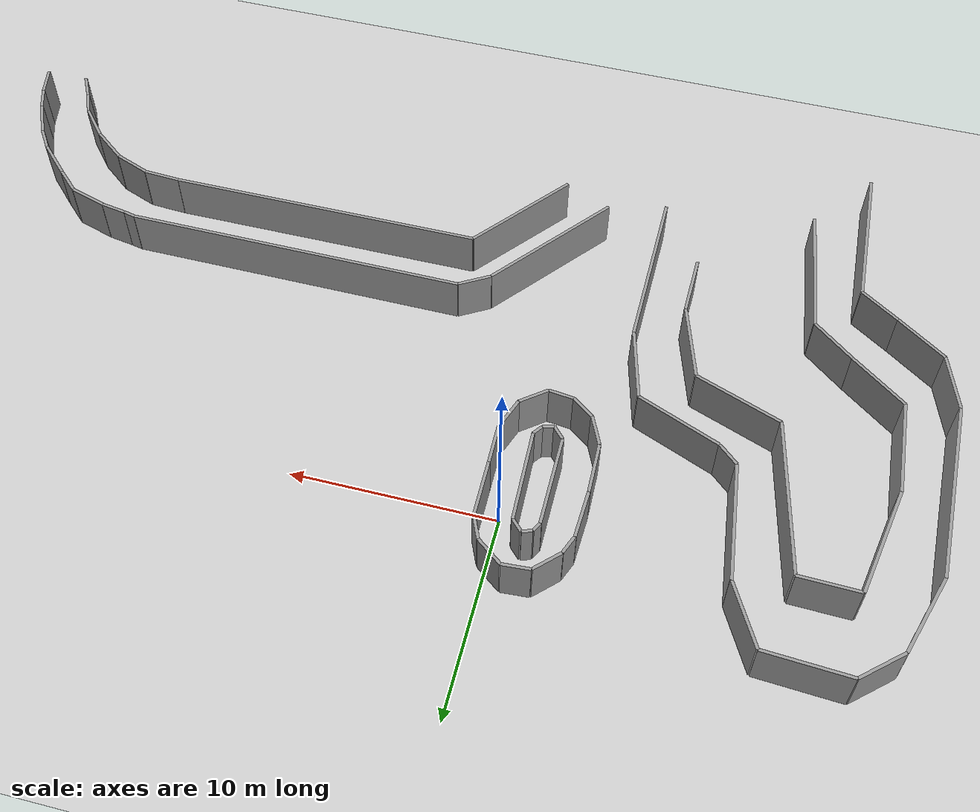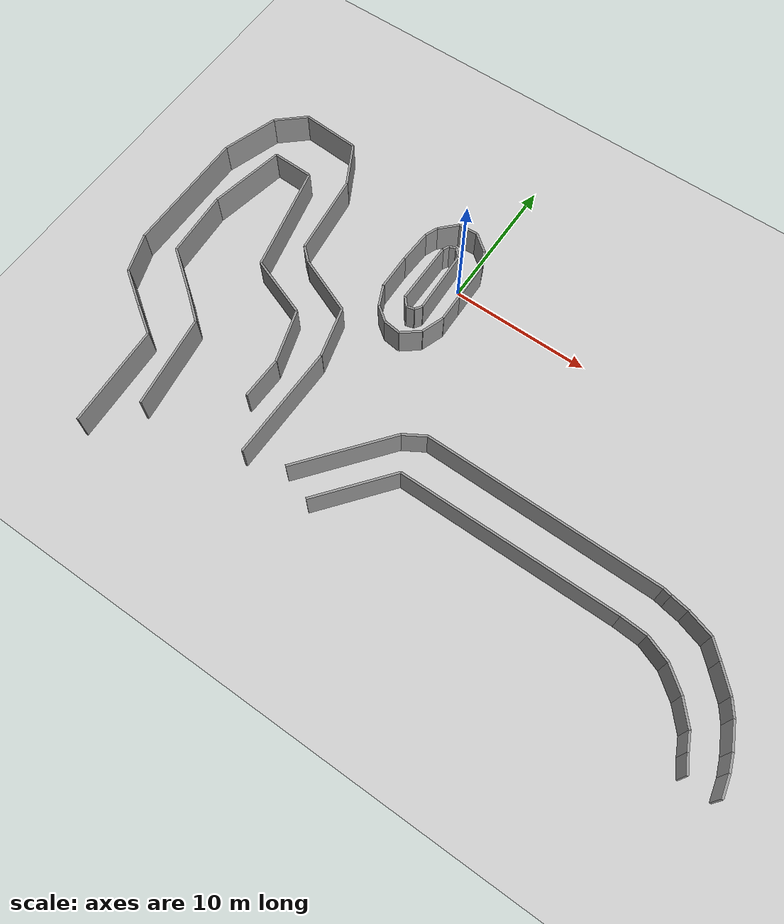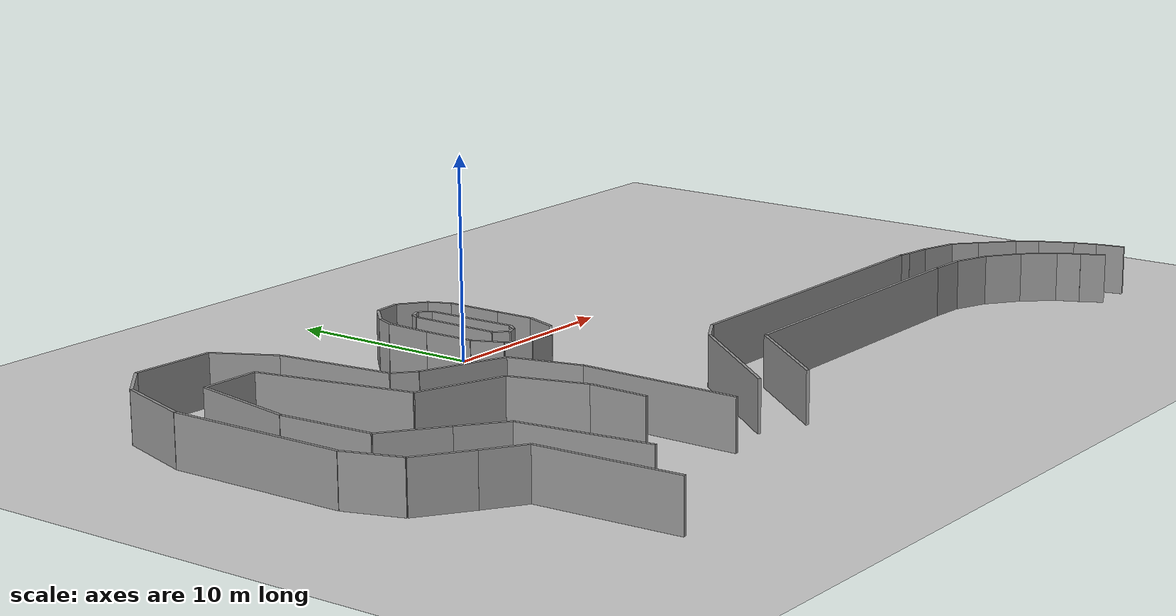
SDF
<sdf version="1.6">
 <world name="default">
  <model name="ground_plane">
   <static>1</static>
   <link name="link">
    <collision name="collision">
     <geometry><plane><normal>0 0 1</normal><size>100 100</size></plane></geometry>
     <surface><friction><ode><mu>100</mu><mu2>50</mu2></ode></friction></surface>
    </collision>
    <visual name="visual">
     <cast_shadows>0</cast_shadows>
     <geometry><plane><normal>0 0 1</normal><size>100 100</size></plane></geometry>
     <material>
      <script><uri>file://media/materials/scripts/gazebo.material</uri><name>Gazebo/Grey</name></script>
     </material>
    </visual>
   </link>
  </model>
  <model name="track2">
   <link name="wall_000">
    <collision name="wall_000_Collision">
     <geometry><box><size>4.375392 0.15 2.5</size></box></geometry>
     <pose>0 0 1.25 0 -0 0</pose>
    </collision>
    <visual name="wall_000_Visual">
     <pose>0 0 1.25 0 -0 0</pose>
     <geometry><box><size>4.375392 0.15 2.5</size></box></geometry>
     <material>
      <script><uri>file://media/materials/scripts/gazebo.material</uri><name>Gazebo/Grey</name></script>
      <ambient>1 1 1 1</ambient>
     </material>
     <meta><layer>0</layer></meta>
    </visual>
    <pose>-6.965100 -5.833000 0 0 -0 -0.390624</pose>
   </link>
   <link name="wall_001">
    <collision name="wall_001_Collision">
     <geometry><box><size>1.246207 0.15 2.5</size></box></geometry>
     <pose>0 0 1.25 0 -0 0</pose>
    </collision>
    <visual name="wall_001_Visual">
     <pose>0 0 1.25 0 -0 0</pose>
     <geometry><box><size>1.246207 0.15 2.5</size></box></geometry>
     <material>
      <script><uri>file://media/materials/scripts/gazebo.material</uri><name>Gazebo/Grey</name></script>
      <ambient>1 1 1 1</ambient>
     </material>
     <meta><layer>0</layer></meta>
    </visual>
    <pose>-9.451000 -4.583000 0 0 -0 -0.733173</pose>
   </link>
   <link name="wall_002">
    <collision name="wall_002_Collision">
     <geometry><box><size>5.872911 0.15 2.5</size></box></geometry>
     <pose>0 0 1.25 0 -0 0</pose>
    </collision>
    <visual name="wall_002_Visual">
     <pose>0 0 1.25 0 -0 0</pose>
     <geometry><box><size>5.872911 0.15 2.5</size></box></geometry>
     <material>
      <script><uri>file://media/materials/scripts/gazebo.material</uri><name>Gazebo/Grey</name></script>
      <ambient>1 1 1 1</ambient>
     </material>
     <meta><layer>0</layer></meta>
    </visual>
    <pose>-10.260000 -1.250000 0 0 -0 -1.452693</pose>
   </link>
   <link name="wall_003">
    <collision name="wall_003_Collision">
     <geometry><box><size>3.309769 0.15 2.5</size></box></geometry>
     <pose>0 0 1.25 0 -0 0</pose>
    </collision>
    <visual name="wall_003_Visual">
     <pose>0 0 1.25 0 -0 0</pose>
     <geometry><box><size>3.309769 0.15 2.5</size></box></geometry>
     <material>
      <script><uri>file://media/materials/scripts/gazebo.material</uri><name>Gazebo/Grey</name></script>
      <ambient>1 1 1 1</ambient>
     </material>
     <meta><layer>0</layer></meta>
    </visual>
    <pose>-11.387000 3.125000 0 0 -0 -1.079311</pose>
   </link>
   <link name="wall_004">
    <collision name="wall_004_Collision">
     <geometry><box><size>4.169502 0.15 2.5</size></box></geometry>
     <pose>0 0 1.25 0 -0 0</pose>
    </collision>
    <visual name="wall_004_Visual">
     <pose>0 0 1.25 0 -0 0</pose>
     <geometry><box><size>4.169502 0.15 2.5</size></box></geometry>
     <material>
      <script><uri>file://media/materials/scripts/gazebo.material</uri><name>Gazebo/Grey</name></script>
      <ambient>1 1 1 1</ambient>
     </material>
     <meta><layer>0</layer></meta>
    </visual>
    <pose>-14.249000 4.709000 0 0 -0 -0.059995</pose>
   </link>
   <link name="wall_005">
    <collision name="wall_005_Collision">
     <geometry><box><size>2.490928 0.15 2.5</size></box></geometry>
     <pose>0 0 1.25 0 -0 0</pose>
    </collision>
    <visual name="wall_005_Visual">
     <pose>0 0 1.25 0 -0 0</pose>
     <geometry><box><size>2.490928 0.15 2.5</size></box></geometry>
     <material>
      <script><uri>file://media/materials/scripts/gazebo.material</uri><name>Gazebo/Grey</name></script>
      <ambient>1 1 1 1</ambient>
     </material>
     <meta><layer>0</layer></meta>
    </visual>
    <pose>-17.255000 4.000000 0 0 -0 0.733710</pose>
   </link>
   <link name="wall_006">
    <collision name="wall_006_Collision">
     <geometry><box><size>4.116790 0.15 2.5</size></box></geometry>
     <pose>0 0 1.25 0 -0 0</pose>
    </collision>
    <visual name="wall_006_Visual">
     <pose>0 0 1.25 0 -0 0</pose>
     <geometry><box><size>4.116790 0.15 2.5</size></box></geometry>
     <material>
      <script><uri>file://media/materials/scripts/gazebo.material</uri><name>Gazebo/Grey</name></script>
      <ambient>1 1 1 1</ambient>
     </material>
     <meta><layer>0</layer></meta>
    </visual>
    <pose>-18.815000 1.208000 0 0 -0 1.257188</pose>
   </link>
   <link name="wall_007">
    <collision name="wall_007_Collision">
     <geometry><box><size>9.000174 0.15 2.5</size></box></geometry>
     <pose>0 0 1.25 0 -0 0</pose>
    </collision>
    <visual name="wall_007_Visual">
     <pose>0 0 1.25 0 -0 0</pose>
     <geometry><box><size>9.000174 0.15 2.5</size></box></geometry>
     <material>
      <script><uri>file://media/materials/scripts/gazebo.material</uri><name>Gazebo/Grey</name></script>
      <ambient>1 1 1 1</ambient>
     </material>
     <meta><layer>0</layer></meta>
    </visual>
    <pose>-19.422000 -5.250000 0 0 -0 1.577018</pose>
   </link>
   <link name="wall_008">
    <collision name="wall_008_Collision">
     <geometry><box><size>2.901719 0.15 2.5</size></box></geometry>
     <pose>0 0 1.25 0 -0 0</pose>
    </collision>
    <visual name="wall_008_Visual">
     <pose>0 0 1.25 0 -0 0</pose>
     <geometry><box><size>2.901719 0.15 2.5</size></box></geometry>
     <material>
      <script><uri>file://media/materials/scripts/gazebo.material</uri><name>Gazebo/Grey</name></script>
      <ambient>1 1 1 1</ambient>
     </material>
     <meta><layer>0</layer></meta>
    </visual>
    <pose>-18.931000 -11.125000 0 0 -0 1.895598</pose>
   </link>
   <link name="wall_009">
    <collision name="wall_009_Collision">
     <geometry><box><size>2.897319 0.15 2.5</size></box></geometry>
     <pose>0 0 1.25 0 -0 0</pose>
    </collision>
    <visual name="wall_009_Visual">
     <pose>0 0 1.25 0 -0 0</pose>
     <geometry><box><size>2.897319 0.15 2.5</size></box></geometry>
     <material>
      <script><uri>file://media/materials/scripts/gazebo.material</uri><name>Gazebo/Grey</name></script>
      <ambient>1 1 1 1</ambient>
     </material>
     <meta><layer>0</layer></meta>
    </visual>
    <pose>-17.283000 -13.333300 0 0 -0 2.528718</pose>
   </link>
   <link name="wall_010">
    <collision name="wall_010_Collision">
     <geometry><box><size>2.232711 0.15 2.5</size></box></geometry>
     <pose>0 0 1.25 0 -0 0</pose>
    </collision>
    <visual name="wall_010_Visual">
     <pose>0 0 1.25 0 -0 0</pose>
     <geometry><box><size>2.232711 0.15 2.5</size></box></geometry>
     <material>
      <script><uri>file://media/materials/scripts/gazebo.material</uri><name>Gazebo/Grey</name></script>
      <ambient>1 1 1 1</ambient>
     </material>
     <meta><layer>0</layer></meta>
    </visual>
    <pose>-15.173000 -14.791600 0 0 -0 2.547379</pose>
   </link>
   <link name="wall_011">
    <collision name="wall_011_Collision">
     <geometry><box><size>7.257652 0.15 2.5</size></box></geometry>
     <pose>0 0 1.25 0 -0 0</pose>
    </collision>
    <visual name="wall_011_Visual">
     <pose>0 0 1.25 0 -0 0</pose>
     <geometry><box><size>7.257652 0.15 2.5</size></box></geometry>
     <material>
      <script><uri>file://media/materials/scripts/gazebo.material</uri><name>Gazebo/Grey</name></script>
      <ambient>1 1 1 1</ambient>
     </material>
     <meta><layer>0</layer></meta>
    </visual>
    <pose>-14.075000 -19.041300 0 0 -0 1.618488</pose>
   </link>
   <link name="wall_018">
    <collision name="wall_018_Collision">
     <geometry><box><size>8.166205 0.15 2.5</size></box></geometry>
     <pose>0 0 1.25 0 -0 0</pose>
    </collision>
    <visual name="wall_018_Visual">
     <pose>0 0 1.25 0 -0 0</pose>
     <geometry><box><size>8.166205 0.15 2.5</size></box></geometry>
     <material>
      <script><uri>file://media/materials/scripts/gazebo.material</uri><name>Gazebo/Grey</name></script>
      <ambient>1 1 1 1</ambient>
     </material>
     <meta><layer>0</layer></meta>
    </visual>
    <pose>-4.046300 -14.333000 0 0 -0 -1.577874</pose>
   </link>
   <link name="wall_019">
    <collision name="wall_019_Collision">
     <geometry><box><size>3.701393 0.15 2.5</size></box></geometry>
     <pose>0 0 1.25 0 -0 0</pose>
    </collision>
    <visual name="wall_019_Visual">
     <pose>0 0 1.25 0 -0 0</pose>
     <geometry><box><size>3.701393 0.15 2.5</size></box></geometry>
     <material>
      <script><uri>file://media/materials/scripts/gazebo.material</uri><name>Gazebo/Grey</name></script>
      <ambient>1 1 1 1</ambient>
     </material>
     <meta><layer>0</layer></meta>
    </visual>
    <pose>-4.479800 -8.458000 0 0 -0 -1.318269</pose>
   </link>
   <link name="wall_020">
    <collision name="wall_020_Collision">
     <geometry><box><size>4.507489 0.15 2.5</size></box></geometry>
     <pose>0 0 1.25 0 -0 0</pose>
    </collision>
    <visual name="wall_020_Visual">
     <pose>0 0 1.25 0 -0 0</pose>
     <geometry><box><size>4.507489 0.15 2.5</size></box></geometry>
     <material>
      <script><uri>file://media/materials/scripts/gazebo.material</uri><name>Gazebo/Grey</name></script>
      <ambient>1 1 1 1</ambient>
     </material>
     <meta><layer>0</layer></meta>
    </visual>
    <pose>-9.422000 -7.708000 0 0 -0 -0.359082</pose>
   </link>
   <link name="wall_021">
    <collision name="wall_021_Collision">
     <geometry><box><size>7.847072 0.15 2.5</size></box></geometry>
     <pose>0 0 1.25 0 -0 0</pose>
    </collision>
    <visual name="wall_021_Visual">
     <pose>0 0 1.25 0 -0 0</pose>
     <geometry><box><size>7.847072 0.15 2.5</size></box></geometry>
     <material>
      <script><uri>file://media/materials/scripts/gazebo.material</uri><name>Gazebo/Grey</name></script>
      <ambient>1 1 1 1</ambient>
     </material>
     <meta><layer>0</layer></meta>
    </visual>
    <pose>-12.370000 -3.083000 0 0 -0 -1.355555</pose>
   </link>
   <link name="wall_022">
    <collision name="wall_022_Collision">
     <geometry><box><size>2.949197 0.15 2.5</size></box></geometry>
     <pose>0 0 1.25 0 -0 0</pose>
    </collision>
    <visual name="wall_022_Visual">
     <pose>0 0 1.25 0 -0 0</pose>
     <geometry><box><size>2.949197 0.15 2.5</size></box></geometry>
     <material>
      <script><uri>file://media/materials/scripts/gazebo.material</uri><name>Gazebo/Grey</name></script>
      <ambient>1 1 1 1</ambient>
     </material>
     <meta><layer>0</layer></meta>
    </visual>
    <pose>-14.682000 0.792000 0 0 -0 -0.028486</pose>
   </link>
   <link name="wall_023">
    <collision name="wall_023_Collision">
     <geometry><box><size>5.516913 0.15 2.5</size></box></geometry>
     <pose>0 0 1.25 0 -0 0</pose>
    </collision>
    <visual name="wall_023_Visual">
     <pose>0 0 1.25 0 -0 0</pose>
     <geometry><box><size>5.516913 0.15 2.5</size></box></geometry>
     <material>
      <script><uri>file://media/materials/scripts/gazebo.material</uri><name>Gazebo/Grey</name></script>
      <ambient>1 1 1 1</ambient>
     </material>
     <meta><layer>0</layer></meta>
    </visual>
    <pose>-16.676000 -1.875000 0 0 -0 1.381150</pose>
   </link>
   <link name="wall_024">
    <collision name="wall_024_Collision">
     <geometry><box><size>4.758723 0.15 2.5</size></box></geometry>
     <pose>0 0 1.25 0 -0 0</pose>
    </collision>
    <visual name="wall_024_Visual">
     <pose>0 0 1.25 0 -0 0</pose>
     <geometry><box><size>4.758723 0.15 2.5</size></box></geometry>
     <material>
      <script><uri>file://media/materials/scripts/gazebo.material</uri><name>Gazebo/Grey</name></script>
      <ambient>1 1 1 1</ambient>
     </material>
     <meta><layer>0</layer></meta>
    </visual>
    <pose>-17.052000 -6.959000 0 0 -0 1.631354</pose>
   </link>
   <link name="wall_025">
    <collision name="wall_025_Collision">
     <geometry><box><size>3.328002 0.15 2.5</size></box></geometry>
     <pose>0 0 1.25 0 -0 0</pose>
    </collision>
    <visual name="wall_025_Visual">
     <pose>0 0 1.25 0 -0 0</pose>
     <geometry><box><size>3.328002 0.15 2.5</size></box></geometry>
     <material>
      <script><uri>file://media/materials/scripts/gazebo.material</uri><name>Gazebo/Grey</name></script>
      <ambient>1 1 1 1</ambient>
     </material>
     <meta><layer>0</layer></meta>
    </visual>
    <pose>-15.578000 -10.334000 0 0 -0 2.496890</pose>
   </link>
   <link name="wall_026">
    <collision name="wall_026_Collision">
     <geometry><box><size>2.521908 0.15 2.5</size></box></geometry>
     <pose>0 0 1.25 0 -0 0</pose>
    </collision>
    <visual name="wall_026_Visual">
     <pose>0 0 1.25 0 -0 0</pose>
     <geometry><box><size>2.521908 0.15 2.5</size></box></geometry>
     <material>
      <script><uri>file://media/materials/scripts/gazebo.material</uri><name>Gazebo/Grey</name></script>
      <ambient>1 1 1 1</ambient>
     </material>
     <meta><layer>0</layer></meta>
    </visual>
    <pose>-13.266000 -12.125000 0 0 -0 2.463508</pose>
   </link>
   <link name="wall_027">
    <collision name="wall_027_Collision">
     <geometry><box><size>6.640970 0.15 2.5</size></box></geometry>
     <pose>0 0 1.25 0 -0 0</pose>
    </collision>
    <visual name="wall_027_Visual">
     <pose>0 0 1.25 0 -0 0</pose>
     <geometry><box><size>6.640970 0.15 2.5</size></box></geometry>
     <material>
      <script><uri>file://media/materials/scripts/gazebo.material</uri><name>Gazebo/Grey</name></script>
      <ambient>1 1 1 1</ambient>
     </material>
     <meta><layer>0</layer></meta>
    </visual>
    <pose>-11.850000 -16.208000 0 0 -0 1.701875</pose>
   </link>
   <link name="wall_032">
    <collision name="wall_032_Collision">
     <geometry><box><size>3.000557 0.15 2.5</size></box></geometry>
     <pose>0 0 1.25 0 -0 0</pose>
    </collision>
    <visual name="wall_032_Visual">
     <pose>0 0 1.25 0 -0 0</pose>
     <geometry><box><size>3.000557 0.15 2.5</size></box></geometry>
     <material>
      <script><uri>file://media/materials/scripts/gazebo.material</uri><name>Gazebo/Grey</name></script>
      <ambient>1 1 1 1</ambient>
     </material>
     <meta><layer>0</layer></meta>
    </visual>
    <pose>-6.184900 -13.750000 0 0 -0 -1.590061</pose>
   </link>
   <link name="wall_033">
    <collision name="wall_033_Collision">
     <geometry><box><size>3.924135 0.15 2.5</size></box></geometry>
     <pose>0 0 1.25 0 -0 0</pose>
    </collision>
    <visual name="wall_033_Visual">
     <pose>0 0 1.25 0 -0 0</pose>
     <geometry><box><size>3.924135 0.15 2.5</size></box></geometry>
     <material>
      <script><uri>file://media/materials/scripts/gazebo.material</uri><name>Gazebo/Grey</name></script>
      <ambient>1 1 1 1</ambient>
     </material>
     <meta><layer>0</layer></meta>
    </visual>
    <pose>-6.734000 -10.375000 0 0 -0 -1.271773</pose>
   </link>
   <link name="wall_034">
    <collision name="wall_034_Collision">
     <geometry><box><size>1.195634 0.15 2.5</size></box></geometry>
     <pose>0 0 1.25 0 -0 0</pose>
    </collision>
    <visual name="wall_034_Visual">
     <pose>0 0 1.25 0 -0 0</pose>
     <geometry><box><size>1.195634 0.15 2.5</size></box></geometry>
     <material>
      <script><uri>file://media/materials/scripts/gazebo.material</uri><name>Gazebo/Grey</name></script>
      <ambient>1 1 1 1</ambient>
     </material>
     <meta><layer>0</layer></meta>
    </visual>
    <pose>0.586740 1.912500 0 0 -0 -1.157576</pose>
   </link>
   <link name="wall_035">
    <collision name="wall_035_Collision">
     <geometry><box><size>1.548632 0.15 2.5</size></box></geometry>
     <pose>0 0 1.25 0 -0 0</pose>
    </collision>
    <visual name="wall_035_Visual">
     <pose>0 0 1.25 0 -0 0</pose>
     <geometry><box><size>1.548632 0.15 2.5</size></box></geometry>
     <material>
      <script><uri>file://media/materials/scripts/gazebo.material</uri><name>Gazebo/Grey</name></script>
      <ambient>1 1 1 1</ambient>
     </material>
     <meta><layer>0</layer></meta>
    </visual>
    <pose>-0.266760 2.932500 0 0 -0 -0.656333</pose>
   </link>
   <link name="wall_036">
    <collision name="wall_036_Collision">
     <geometry><box><size>1.362576 0.15 2.5</size></box></geometry>
     <pose>0 0 1.25 0 -0 0</pose>
    </collision>
    <visual name="wall_036_Visual">
     <pose>0 0 1.25 0 -0 0</pose>
     <geometry><box><size>1.362576 0.15 2.5</size></box></geometry>
     <material>
      <script><uri>file://media/materials/scripts/gazebo.material</uri><name>Gazebo/Grey</name></script>
      <ambient>1 1 1 1</ambient>
     </material>
     <meta><layer>0</layer></meta>
    </visual>
    <pose>-1.560000 3.360000 0 0 -0 0.066100</pose>
   </link>
   <link name="wall_037">
    <collision name="wall_037_Collision">
     <geometry><box><size>1.558364 0.15 2.5</size></box></geometry>
     <pose>0 0 1.25 0 -0 0</pose>
    </collision>
    <visual name="wall_037_Visual">
     <pose>0 0 1.25 0 -0 0</pose>
     <geometry><box><size>1.558364 0.15 2.5</size></box></geometry>
     <material>
      <script><uri>file://media/materials/scripts/gazebo.material</uri><name>Gazebo/Grey</name></script>
      <ambient>1 1 1 1</ambient>
     </material>
     <meta><layer>0</layer></meta>
    </visual>
    <pose>-2.786700 2.760000 0 0 -0 0.792749</pose>
   </link>
   <link name="wall_038">
    <collision name="wall_038_Collision">
     <geometry><box><size>0.983273 0.15 2.5</size></box></geometry>
     <pose>0 0 1.25 0 -0 0</pose>
    </collision>
    <visual name="wall_038_Visual">
     <pose>0 0 1.25 0 -0 0</pose>
     <geometry><box><size>0.983273 0.15 2.5</size></box></geometry>
     <material>
      <script><uri>file://media/materials/scripts/gazebo.material</uri><name>Gazebo/Grey</name></script>
      <ambient>1 1 1 1</ambient>
     </material>
     <meta><layer>0</layer></meta>
    </visual>
    <pose>-3.513600 1.747500 0 0 -0 1.195956</pose>
   </link>
   <link name="wall_039">
    <collision name="wall_039_Collision">
     <geometry><box><size>2.372378 0.15 2.5</size></box></geometry>
     <pose>0 0 1.25 0 -0 0</pose>
    </collision>
    <visual name="wall_039_Visual">
     <pose>0 0 1.25 0 -0 0</pose>
     <geometry><box><size>2.372378 0.15 2.5</size></box></geometry>
     <material>
      <script><uri>file://media/materials/scripts/gazebo.material</uri><name>Gazebo/Grey</name></script>
      <ambient>1 1 1 1</ambient>
     </material>
     <meta><layer>0</layer></meta>
    </visual>
    <pose>-3.746700 0.105000 0 0 -0 1.526016</pose>
   </link>
   <link name="wall_040">
    <collision name="wall_040_Collision">
     <geometry><box><size>2.535562 0.15 2.5</size></box></geometry>
     <pose>0 0 1.25 0 -0 0</pose>
    </collision>
    <visual name="wall_040_Visual">
     <pose>0 0 1.25 0 -0 0</pose>
     <geometry><box><size>2.535562 0.15 2.5</size></box></geometry>
     <material>
      <script><uri>file://media/materials/scripts/gazebo.material</uri><name>Gazebo/Grey</name></script>
      <ambient>1 1 1 1</ambient>
     </material>
     <meta><layer>0</layer></meta>
    </visual>
    <pose>-3.773100 -2.347500 0 0 -0 1.591858</pose>
   </link>
   <link name="wall_041">
    <collision name="wall_041_Collision">
     <geometry><box><size>1.561958 0.15 2.5</size></box></geometry>
     <pose>0 0 1.25 0 -0 0</pose>
    </collision>
    <visual name="wall_041_Visual">
     <pose>0 0 1.25 0 -0 0</pose>
     <geometry><box><size>1.561958 0.15 2.5</size></box></geometry>
     <material>
      <script><uri>file://media/materials/scripts/gazebo.material</uri><name>Gazebo/Grey</name></script>
      <ambient>1 1 1 1</ambient>
     </material>
     <meta><layer>0</layer></meta>
    </visual>
    <pose>-3.426600 -4.327500 0 0 -0 1.992687</pose>
   </link>
   <link name="wall_042">
    <collision name="wall_042_Collision">
     <geometry><box><size>1.280286 0.15 2.5</size></box></geometry>
     <pose>0 0 1.25 0 -0 0</pose>
    </collision>
    <visual name="wall_042_Visual">
     <pose>0 0 1.25 0 -0 0</pose>
     <geometry><box><size>1.280286 0.15 2.5</size></box></geometry>
     <material>
      <script><uri>file://media/materials/scripts/gazebo.material</uri><name>Gazebo/Grey</name></script>
      <ambient>1 1 1 1</ambient>
     </material>
     <meta><layer>0</layer></meta>
    </visual>
    <pose>-2.593500 -5.422500 0 0 -0 2.501185</pose>
   </link>
   <link name="wall_043">
    <collision name="wall_043_Collision">
     <geometry><box><size>1.236135 0.15 2.5</size></box></geometry>
     <pose>0 0 1.25 0 -0 0</pose>
    </collision>
    <visual name="wall_043_Visual">
     <pose>0 0 1.25 0 -0 0</pose>
     <geometry><box><size>1.236135 0.15 2.5</size></box></geometry>
     <material>
      <script><uri>file://media/materials/scripts/gazebo.material</uri><name>Gazebo/Grey</name></script>
      <ambient>1 1 1 1</ambient>
     </material>
     <meta><layer>0</layer></meta>
    </visual>
    <pose>-1.466700 -5.880000 0 0 -0 3.019947</pose>
   </link>
   <link name="wall_044">
    <collision name="wall_044_Collision">
     <geometry><box><size>1.536656 0.15 2.5</size></box></geometry>
     <pose>0 0 1.25 0 -0 0</pose>
    </collision>
    <visual name="wall_044_Visual">
     <pose>0 0 1.25 0 -0 0</pose>
     <geometry><box><size>1.536656 0.15 2.5</size></box></geometry>
     <material>
      <script><uri>file://media/materials/scripts/gazebo.material</uri><name>Gazebo/Grey</name></script>
      <ambient>1 1 1 1</ambient>
     </material>
     <meta><layer>0</layer></meta>
    </visual>
    <pose>-0.253260 -5.475000 0 0 -0 -2.466803</pose>
   </link>
   <link name="wall_045">
    <collision name="wall_045_Collision">
     <geometry><box><size>1.685708 0.15 2.5</size></box></geometry>
     <pose>0 0 1.25 0 -0 0</pose>
    </collision>
    <visual name="wall_045_Visual">
     <pose>0 0 1.25 0 -0 0</pose>
     <geometry><box><size>1.685708 0.15 2.5</size></box></geometry>
     <material>
      <script><uri>file://media/materials/scripts/gazebo.material</uri><name>Gazebo/Grey</name></script>
      <ambient>1 1 1 1</ambient>
     </material>
     <meta><layer>0</layer></meta>
    </visual>
    <pose>0.626640 -4.200000 0 0 -0 -1.909386</pose>
   </link>
   <link name="wall_046">
    <collision name="wall_046_Collision">
     <geometry><box><size>1.935418 0.15 2.5</size></box></geometry>
     <pose>0 0 1.25 0 -0 0</pose>
    </collision>
    <visual name="wall_046_Visual">
     <pose>0 0 1.25 0 -0 0</pose>
     <geometry><box><size>1.935418 0.15 2.5</size></box></geometry>
     <material>
      <script><uri>file://media/materials/scripts/gazebo.material</uri><name>Gazebo/Grey</name></script>
      <ambient>1 1 1 1</ambient>
     </material>
     <meta><layer>0</layer></meta>
    </visual>
    <pose>0.886500 -2.437500 0 0 -0 -1.550024</pose>
   </link>
   <link name="wall_047">
    <collision name="wall_047_Collision">
     <geometry><box><size>2.835277 0.15 2.5</size></box></geometry>
     <pose>0 0 1.25 0 -0 0</pose>
    </collision>
    <visual name="wall_047_Visual">
     <pose>0 0 1.25 0 -0 0</pose>
     <geometry><box><size>2.835277 0.15 2.5</size></box></geometry>
     <material>
      <script><uri>file://media/materials/scripts/gazebo.material</uri><name>Gazebo/Grey</name></script>
      <ambient>1 1 1 1</ambient>
     </material>
     <meta><layer>0</layer></meta>
    </visual>
    <pose>0.846600 -0.052500 0 0 -0 -1.556829</pose>
   </link>
   <link name="wall_048">
    <collision name="wall_048_Collision">
     <geometry><box><size>0.729845 0.15 2.5</size></box></geometry>
     <pose>0 0 1.25 0 -0 0</pose>
    </collision>
    <visual name="wall_048_Visual">
     <pose>0 0 1.25 0 -0 0</pose>
     <geometry><box><size>0.729845 0.15 2.5</size></box></geometry>
     <material>
      <script><uri>file://media/materials/scripts/gazebo.material</uri><name>Gazebo/Grey</name></script>
      <ambient>1 1 1 1</ambient>
     </material>
     <meta><layer>0</layer></meta>
    </visual>
    <pose>-1.119900 1.372500 0 0 -0 -0.802838</pose>
   </link>
   <link name="wall_049">
    <collision name="wall_049_Collision">
     <geometry><box><size>0.512640 0.15 2.5</size></box></geometry>
     <pose>0 0 1.25 0 -0 0</pose>
    </collision>
    <visual name="wall_049_Visual">
     <pose>0 0 1.25 0 -0 0</pose>
     <geometry><box><size>0.512640 0.15 2.5</size></box></geometry>
     <material>
      <script><uri>file://media/materials/scripts/gazebo.material</uri><name>Gazebo/Grey</name></script>
      <ambient>1 1 1 1</ambient>
     </material>
     <meta><layer>0</layer></meta>
    </visual>
    <pose>-1.613400 1.545000 0 0 -0 0.358771</pose>
   </link>
   <link name="wall_050">
    <collision name="wall_050_Collision">
     <geometry><box><size>0.490574 0.15 2.5</size></box></geometry>
     <pose>0 0 1.25 0 -0 0</pose>
    </collision>
    <visual name="wall_050_Visual">
     <pose>0 0 1.25 0 -0 0</pose>
     <geometry><box><size>0.490574 0.15 2.5</size></box></geometry>
     <material>
      <script><uri>file://media/materials/scripts/gazebo.material</uri><name>Gazebo/Grey</name></script>
      <ambient>1 1 1 1</ambient>
     </material>
     <meta><layer>0</layer></meta>
    </visual>
    <pose>-1.966800 1.237500 0 0 -0 1.090192</pose>
   </link>
   <link name="wall_051">
    <collision name="wall_051_Collision">
     <geometry><box><size>4.515021 0.15 2.5</size></box></geometry>
     <pose>0 0 1.25 0 -0 0</pose>
    </collision>
    <visual name="wall_051_Visual">
     <pose>0 0 1.25 0 -0 0</pose>
     <geometry><box><size>4.515021 0.15 2.5</size></box></geometry>
     <material>
      <script><uri>file://media/materials/scripts/gazebo.material</uri><name>Gazebo/Grey</name></script>
      <ambient>1 1 1 1</ambient>
     </material>
     <meta><layer>0</layer></meta>
    </visual>
    <pose>-2.073300 -1.237500 0 0 -0 1.573853</pose>
   </link>
   <link name="wall_052">
    <collision name="wall_052_Collision">
     <geometry><box><size>0.762457 0.15 2.5</size></box></geometry>
     <pose>0 0 1.25 0 -0 0</pose>
    </collision>
    <visual name="wall_052_Visual">
     <pose>0 0 1.25 0 -0 0</pose>
     <geometry><box><size>0.762457 0.15 2.5</size></box></geometry>
     <material>
      <script><uri>file://media/materials/scripts/gazebo.material</uri><name>Gazebo/Grey</name></script>
      <ambient>1 1 1 1</ambient>
     </material>
     <meta><layer>0</layer></meta>
    </visual>
    <pose>-1.813200 -3.780000 0 0 -0 2.297177</pose>
   </link>
   <link name="wall_053">
    <collision name="wall_053_Collision">
     <geometry><box><size>0.554090 0.15 2.5</size></box></geometry>
     <pose>0 0 1.25 0 -0 0</pose>
    </collision>
    <visual name="wall_053_Visual">
     <pose>0 0 1.25 0 -0 0</pose>
     <geometry><box><size>0.554090 0.15 2.5</size></box></geometry>
     <material>
      <script><uri>file://media/materials/scripts/gazebo.material</uri><name>Gazebo/Grey</name></script>
      <ambient>1 1 1 1</ambient>
     </material>
     <meta><layer>0</layer></meta>
    </visual>
    <pose>-1.293300 -3.990000 0 0 -0 -2.867458</pose>
   </link>
   <link name="wall_054">
    <collision name="wall_054_Collision">
     <geometry><box><size>0.552062 0.15 2.5</size></box></geometry>
     <pose>0 0 1.25 0 -0 0</pose>
    </collision>
    <visual name="wall_054_Visual">
     <pose>0 0 1.25 0 -0 0</pose>
     <geometry><box><size>0.552062 0.15 2.5</size></box></geometry>
     <material>
      <script><uri>file://media/materials/scripts/gazebo.material</uri><name>Gazebo/Grey</name></script>
      <ambient>1 1 1 1</ambient>
     </material>
     <meta><layer>0</layer></meta>
    </visual>
    <pose>-0.866700 -3.690000 0 0 -0 -2.188645</pose>
   </link>
   <link name="wall_055">
    <collision name="wall_055_Collision">
     <geometry><box><size>4.577783 0.15 2.5</size></box></geometry>
     <pose>0 0 1.25 0 -0 0</pose>
    </collision>
    <visual name="wall_055_Visual">
     <pose>0 0 1.25 0 -0 0</pose>
     <geometry><box><size>4.577783 0.15 2.5</size></box></geometry>
     <material>
      <script><uri>file://media/materials/scripts/gazebo.material</uri><name>Gazebo/Grey</name></script>
      <ambient>1 1 1 1</ambient>
     </material>
     <meta><layer>0</layer></meta>
    </visual>
    <pose>-0.786600 -1.177500 0 0 -0 -1.535925</pose>
   </link>
   <link name="wall_081">
    <collision name="wall_081_Collision">
     <geometry><box><size>1.244593 0.15 2.5</size></box></geometry>
     <pose>0 0 1.25 0 -0 0</pose>
    </collision>
    <visual name="wall_081_Visual">
     <pose>0 0 1.25 0 -0 0</pose>
     <geometry><box><size>1.244593 0.15 2.5</size></box></geometry>
     <material>
      <script><uri>file://media/materials/scripts/gazebo.material</uri><name>Gazebo/Grey</name></script>
      <ambient>1 1 1 1</ambient>
     </material>
     <meta><layer>0</layer></meta>
    </visual>
    <pose>27.553750 -18.994250 0 0 -0 -1.088283</pose>
   </link>
   <link name="wall_082">
    <collision name="wall_082_Collision">
     <geometry><box><size>1.203288 0.15 2.5</size></box></geometry>
     <pose>0 0 1.25 0 -0 0</pose>
    </collision>
    <visual name="wall_082_Visual">
     <pose>0 0 1.25 0 -0 0</pose>
     <geometry><box><size>1.203288 0.15 2.5</size></box></geometry>
     <material>
      <script><uri>file://media/materials/scripts/gazebo.material</uri><name>Gazebo/Grey</name></script>
      <ambient>1 1 1 1</ambient>
     </material>
     <meta><layer>0</layer></meta>
    </visual>
    <pose>27.020000 -17.893500 0 0 -0 -1.151391</pose>
   </link>
   <link name="wall_083">
    <collision name="wall_083_Collision">
     <geometry><box><size>1.895521 0.15 2.5</size></box></geometry>
     <pose>0 0 1.25 0 -0 0</pose>
    </collision>
    <visual name="wall_083_Visual">
     <pose>0 0 1.25 0 -0 0</pose>
     <geometry><box><size>1.895521 0.15 2.5</size></box></geometry>
     <material>
      <script><uri>file://media/materials/scripts/gazebo.material</uri><name>Gazebo/Grey</name></script>
      <ambient>1 1 1 1</ambient>
     </material>
     <meta><layer>0</layer></meta>
    </visual>
    <pose>26.153750 -16.628250 0 0 -0 -0.855961</pose>
   </link>
   <link name="wall_084">
    <collision name="wall_084_Collision">
     <geometry><box><size>1.972898 0.15 2.5</size></box></geometry>
     <pose>0 0 1.25 0 -0 0</pose>
    </collision>
    <visual name="wall_084_Visual">
     <pose>0 0 1.25 0 -0 0</pose>
     <geometry><box><size>1.972898 0.15 2.5</size></box></geometry>
     <material>
      <script><uri>file://media/materials/scripts/gazebo.material</uri><name>Gazebo/Grey</name></script>
      <ambient>1 1 1 1</ambient>
     </material>
     <meta><layer>0</layer></meta>
    </visual>
    <pose>24.753750 -15.307000 0 0 -0 -0.660888</pose>
   </link>
   <link name="wall_085">
    <collision name="wall_085_Collision">
     <geometry><box><size>1.854491 0.15 2.5</size></box></geometry>
     <pose>0 0 1.25 0 -0 0</pose>
    </collision>
    <visual name="wall_085_Visual">
     <pose>0 0 1.25 0 -0 0</pose>
     <geometry><box><size>1.854491 0.15 2.5</size></box></geometry>
     <material>
      <script><uri>file://media/materials/scripts/gazebo.material</uri><name>Gazebo/Grey</name></script>
      <ambient>1 1 1 1</ambient>
     </material>
     <meta><layer>0</layer></meta>
    </visual>
    <pose>23.108750 -14.370750 0 0 -0 -0.364735</pose>
   </link>
   <link name="wall_086">
    <collision name="wall_086_Collision">
     <geometry><box><size>1.840701 0.15 2.5</size></box></geometry>
     <pose>0 0 1.25 0 -0 0</pose>
    </collision>
    <visual name="wall_086_Visual">
     <pose>0 0 1.25 0 -0 0</pose>
     <geometry><box><size>1.840701 0.15 2.5</size></box></geometry>
     <material>
      <script><uri>file://media/materials/scripts/gazebo.material</uri><name>Gazebo/Grey</name></script>
      <ambient>1 1 1 1</ambient>
     </material>
     <meta><layer>0</layer></meta>
    </visual>
    <pose>21.323750 -13.985750 0 0 -0 -0.058979</pose>
   </link>
   <link name="wall_087">
    <collision name="wall_087_Collision">
     <geometry><box><size>15.571500 0.15 2.5</size></box></geometry>
     <pose>0 0 1.25 0 -0 0</pose>
    </collision>
    <visual name="wall_087_Visual">
     <pose>0 0 1.25 0 -0 0</pose>
     <geometry><box><size>15.571500 0.15 2.5</size></box></geometry>
     <material>
      <script><uri>file://media/materials/scripts/gazebo.material</uri><name>Gazebo/Grey</name></script>
      <ambient>1 1 1 1</ambient>
     </material>
     <meta><layer>0</layer></meta>
    </visual>
    <pose>12.619250 -13.931500 0 0 -0 0.000000</pose>
   </link>
   <link name="wall_088">
    <collision name="wall_088_Collision">
     <geometry><box><size>6.050199 0.15 2.5</size></box></geometry>
     <pose>0 0 1.25 0 -0 0</pose>
    </collision>
    <visual name="wall_088_Visual">
     <pose>0 0 1.25 0 -0 0</pose>
     <geometry><box><size>6.050199 0.15 2.5</size></box></geometry>
     <material>
      <script><uri>file://media/materials/scripts/gazebo.material</uri><name>Gazebo/Grey</name></script>
      <ambient>1 1 1 1</ambient>
     </material>
     <meta><layer>0</layer></meta>
    </visual>
    <pose>2.948487 -16.297500 0 0 -0 0.898066</pose>
   </link>
   <link name="wall_118">
    <collision name="wall_118_Collision">
     <geometry><box><size>1.462087 0.15 2.5</size></box></geometry>
     <pose>0 0 1.25 0 -0 0</pose>
    </collision>
    <visual name="wall_118_Visual">
     <pose>0 0 1.25 0 -0 0</pose>
     <geometry><box><size>1.462087 0.15 2.5</size></box></geometry>
     <material>
      <script><uri>file://media/materials/scripts/gazebo.material</uri><name>Gazebo/Grey</name></script>
      <ambient>1 1 1 1</ambient>
     </material>
     <meta><layer>0</layer></meta>
    </visual>
    <pose>29.828750 -18.829750 0 0 -0 -1.365889</pose>
   </link>
   <link name="wall_119">
    <collision name="wall_119_Collision">
     <geometry><box><size>1.167789 0.15 2.5</size></box></geometry>
     <pose>0 0 1.25 0 -0 0</pose>
    </collision>
    <visual name="wall_119_Visual">
     <pose>0 0 1.25 0 -0 0</pose>
     <geometry><box><size>1.167789 0.15 2.5</size></box></geometry>
     <material>
      <script><uri>file://media/materials/scripts/gazebo.material</uri><name>Gazebo/Grey</name></script>
      <ambient>1 1 1 1</ambient>
     </material>
     <meta><layer>0</layer></meta>
    </visual>
    <pose>29.487500 -17.562750 0 0 -0 -1.234829</pose>
   </link>
   <link name="wall_120">
    <collision name="wall_120_Collision">
     <geometry><box><size>1.819465 0.15 2.5</size></box></geometry>
     <pose>0 0 1.25 0 -0 0</pose>
    </collision>
    <visual name="wall_120_Visual">
     <pose>0 0 1.25 0 -0 0</pose>
     <geometry><box><size>1.819465 0.15 2.5</size></box></geometry>
     <material>
      <script><uri>file://media/materials/scripts/gazebo.material</uri><name>Gazebo/Grey</name></script>
      <ambient>1 1 1 1</ambient>
     </material>
     <meta><layer>0</layer></meta>
    </visual>
    <pose>28.910000 -16.187250 0 0 -0 -1.133821</pose>
   </link>
   <link name="wall_121">
    <collision name="wall_121_Collision">
     <geometry><box><size>1.202870 0.15 2.5</size></box></geometry>
     <pose>0 0 1.25 0 -0 0</pose>
    </collision>
    <visual name="wall_121_Visual">
     <pose>0 0 1.25 0 -0 0</pose>
     <geometry><box><size>1.202870 0.15 2.5</size></box></geometry>
     <material>
      <script><uri>file://media/materials/scripts/gazebo.material</uri><name>Gazebo/Grey</name></script>
      <ambient>1 1 1 1</ambient>
     </material>
     <meta><layer>0</layer></meta>
    </visual>
    <pose>28.183750 -14.867750 0 0 -0 -0.967460</pose>
   </link>
   <link name="wall_122">
    <collision name="wall_122_Collision">
     <geometry><box><size>2.039350 0.15 2.5</size></box></geometry>
     <pose>0 0 1.25 0 -0 0</pose>
    </collision>
    <visual name="wall_122_Visual">
     <pose>0 0 1.25 0 -0 0</pose>
     <geometry><box><size>2.039350 0.15 2.5</size></box></geometry>
     <material>
      <script><uri>file://media/materials/scripts/gazebo.material</uri><name>Gazebo/Grey</name></script>
      <ambient>1 1 1 1</ambient>
     </material>
     <meta><layer>0</layer></meta>
    </visual>
    <pose>27.116250 -13.656750 0 0 -0 -0.778117</pose>
   </link>
   <link name="wall_123">
    <collision name="wall_123_Collision">
     <geometry><box><size>1.438670 0.15 2.5</size></box></geometry>
     <pose>0 0 1.25 0 -0 0</pose>
    </collision>
    <visual name="wall_123_Visual">
     <pose>0 0 1.25 0 -0 0</pose>
     <geometry><box><size>1.438670 0.15 2.5</size></box></geometry>
     <material>
      <script><uri>file://media/materials/scripts/gazebo.material</uri><name>Gazebo/Grey</name></script>
      <ambient>1 1 1 1</ambient>
     </material>
     <meta><layer>0</layer></meta>
    </visual>
    <pose>25.865000 -12.449250 0 0 -0 -0.752708</pose>
   </link>
   <link name="wall_124">
    <collision name="wall_124_Collision">
     <geometry><box><size>1.920939 0.15 2.5</size></box></geometry>
     <pose>0 0 1.25 0 -0 0</pose>
    </collision>
    <visual name="wall_124_Visual">
     <pose>0 0 1.25 0 -0 0</pose>
     <geometry><box><size>1.920939 0.15 2.5</size></box></geometry>
     <material>
      <script><uri>file://media/materials/scripts/gazebo.material</uri><name>Gazebo/Grey</name></script>
      <ambient>1 1 1 1</ambient>
     </material>
     <meta><layer>0</layer></meta>
    </visual>
    <pose>24.421250 -11.677500 0 0 -0 -0.295820</pose>
   </link>
   <link name="wall_125">
    <collision name="wall_125_Collision">
     <geometry><box><size>1.277380 0.15 2.5</size></box></geometry>
     <pose>0 0 1.25 0 -0 0</pose>
    </collision>
    <visual name="wall_125_Visual">
     <pose>0 0 1.25 0 -0 0</pose>
     <geometry><box><size>1.277380 0.15 2.5</size></box></geometry>
     <material>
      <script><uri>file://media/materials/scripts/gazebo.material</uri><name>Gazebo/Grey</name></script>
      <ambient>1 1 1 1</ambient>
     </material>
     <meta><layer>0</layer></meta>
    </visual>
    <pose>22.872500 -11.292500 0 0 -0 -0.165149</pose>
   </link>
   <link name="wall_126">
    <collision name="wall_126_Collision">
     <geometry><box><size>0.590349 0.15 2.5</size></box></geometry>
     <pose>0 0 1.25 0 -0 0</pose>
    </collision>
    <visual name="wall_126_Visual">
     <pose>0 0 1.25 0 -0 0</pose>
     <geometry><box><size>0.590349 0.15 2.5</size></box></geometry>
     <material>
      <script><uri>file://media/materials/scripts/gazebo.material</uri><name>Gazebo/Grey</name></script>
      <ambient>1 1 1 1</ambient>
     </material>
     <meta><layer>0</layer></meta>
    </visual>
    <pose>21.953750 -11.126250 0 0 -0 -0.209023</pose>
   </link>
   <link name="wall_127">
    <collision name="wall_127_Collision">
     <geometry><box><size>16.831828 0.15 2.5</size></box></geometry>
     <pose>0 0 1.25 0 -0 0</pose>
    </collision>
    <visual name="wall_127_Visual">
     <pose>0 0 1.25 0 -0 0</pose>
     <geometry><box><size>16.831828 0.15 2.5</size></box></geometry>
     <material>
      <script><uri>file://media/materials/scripts/gazebo.material</uri><name>Gazebo/Grey</name></script>
      <ambient>1 1 1 1</ambient>
     </material>
     <meta><layer>0</layer></meta>
    </visual>
    <pose>13.249250 -11.012500 0 0 -0 -0.006238</pose>
   </link>
   <link name="wall_128">
    <collision name="wall_128_Collision">
     <geometry><box><size>1.692698 0.15 2.5</size></box></geometry>
     <pose>0 0 1.25 0 -0 0</pose>
    </collision>
    <visual name="wall_128_Visual">
     <pose>0 0 1.25 0 -0 0</pose>
     <geometry><box><size>1.692698 0.15 2.5</size></box></geometry>
     <material>
      <script><uri>file://media/materials/scripts/gazebo.material</uri><name>Gazebo/Grey</name></script>
      <ambient>1 1 1 1</ambient>
     </material>
     <meta><layer>0</layer></meta>
    </visual>
    <pose>4.109000 -11.397500 0 0 -0 0.543256</pose>
   </link>
   <link name="wall_129">
    <collision name="wall_129_Collision">
     <geometry><box><size>7.458175 0.15 2.5</size></box></geometry>
     <pose>0 0 1.25 0 -0 0</pose>
    </collision>
    <visual name="wall_129_Visual">
     <pose>0 0 1.25 0 -0 0</pose>
     <geometry><box><size>7.458175 0.15 2.5</size></box></geometry>
     <material>
      <script><uri>file://media/materials/scripts/gazebo.material</uri><name>Gazebo/Grey</name></script>
      <ambient>1 1 1 1</ambient>
     </material>
     <meta><layer>0</layer></meta>
    </visual>
    <pose>1.063825 -14.754000 0 0 -0 0.899097</pose>
   </link>
   <static>1</static>
  </model>
 </world>
</sdf>
